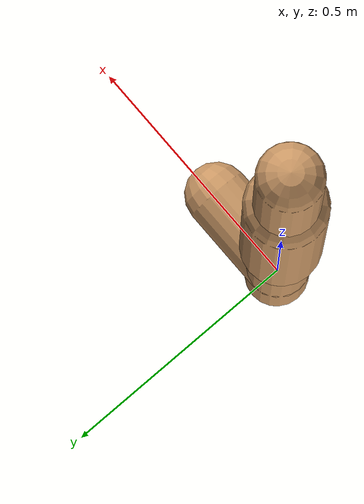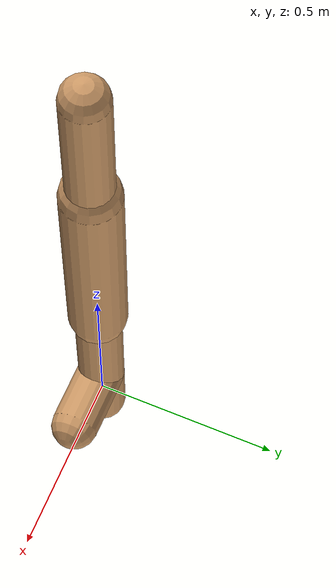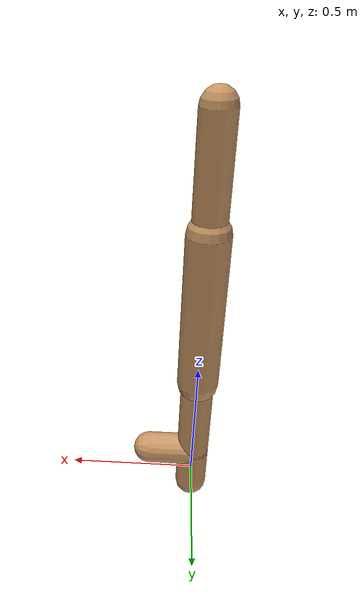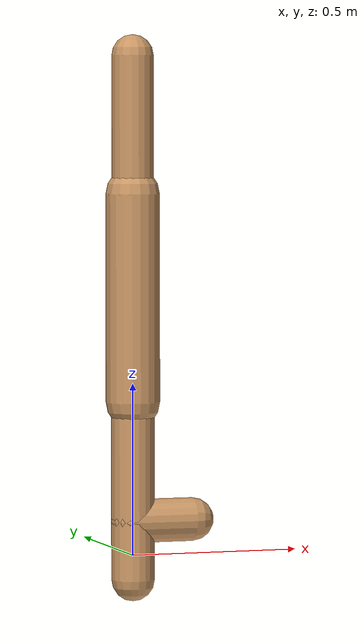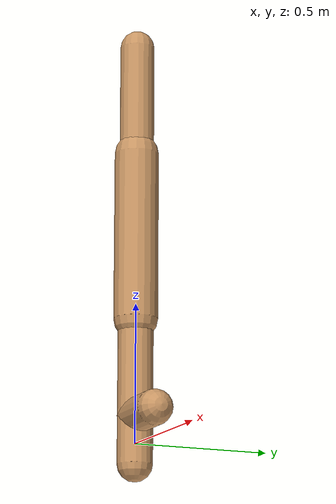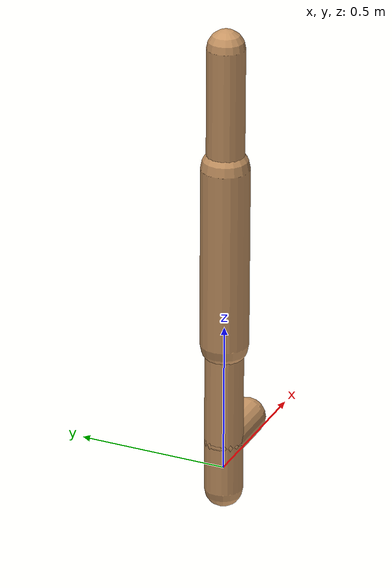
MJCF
<mujoco model="walker2d">
  <compiler angle="degree" coordinate="global" inertiafromgeom="true" />
  <default>
    <joint armature="0.01" damping=".1" limited="true" />
    <geom conaffinity="0" condim="3" contype="1" density="1000" friction="0.8 .1 .1" rgba="0.8 0.6 .4 1" />
  </default>
  <option integrator="RK4" timestep="0.002" />
  <worldbody>

    <body name="torso" pos="0 0 0.32424894306913676">
      <joint armature="0" axis="1 0 0" damping="0" limited="false" name="ignorex" pos="0 0 0" stiffness="0" type="slide" />
      <joint armature="0" axis="0 0 1" damping="0" limited="false" name="ignorez" pos="0 0 0" ref="1.25" stiffness="0" type="slide" />
      <joint armature="0" axis="0 1 0" damping="0" limited="false" name="ignorey" pos="0 0 0" stiffness="0" type="hinge" />
      <geom fromto="0 0 1.45 0 0 1.05" name="torso_geom" size="0.06097281240120871" type="capsule" />
      <body name="thigh">
        <joint axis="0 -1 0" name="thigh_joint" pos="0 0 1.05" range="-150 0" type="hinge" />
        <geom fromto="0.0 0.0 1.05 0.0 0.0 0.44640839538830357" name="thigh_geom" size="0.07849651299270778" type="capsule" />
        <body name="leg" pos="0.0 0.0 -0.1535916046116964">
          <joint axis="0 -1 0" name="leg_joint" pos="0 0 0.6" range="-150 0" type="hinge" />
          <geom fromto="0.0 0.0 0.6 0.0 0.0 -0.07065733845744038" name="leg_geom" size="0.06279721039416622" type="capsule" />
          <body name="foot" pos="0.0 0.0 -0.17065733845744038">
            <joint axis="0 -1 0" name="foot_joint" pos="0 0 0.1" range="-45 45" type="hinge" />
            <geom fromto="0.0 0.0 0.1 0.1793754532613368 0.0 0.1" name="foot_geom" size="0.06365485195081952" type="capsule" />
          </body>
        </body>
      </body>

      <body name="thigh_left">
        <joint axis="0 -1 0" name="thigh_left_joint" pos="0 0 1.05" range="-150 0" type="hinge" />
        <geom fromto="0.0 0.0 1.05 0.0 0.0 0.44640839538830357" name="thigh_left_geom" rgba=".7 .3 .6 1" size="0.07849651299270778" type="capsule" />
        <body name="leg_left" pos="0.0 0.0 -0.1535916046116964">
          <joint axis="0 -1 0" name="leg_left_joint" pos="0 0 0.6" range="-150 0" type="hinge" />
          <geom fromto="0.0 0.0 0.6 0.0 0.0 -0.07065733845744038" name="leg_left_geom" rgba=".7 .3 .6 1" size="0.06279721039416622" type="capsule" />
          <body name="foot_left" pos="0.0 0.0 -0.17065733845744038">
            <joint axis="0 -1 0" name="foot_left_joint" pos="0 0 0.1" range="-45 45" type="hinge" />
            <geom fromto="0.0 0.0 0.1 0.1793754532613368 0.0 0.1" name="foot_left_geom" rgba=".7 .3 .6 1" size="0.06365485195081952" type="capsule" />
          </body>
        </body>
      </body>
    </body>
  </worldbody>
  <actuator>

    <motor ctrllimited="true" ctrlrange="-1.0 1.0" gear="100" joint="thigh_joint" />
    <motor ctrllimited="true" ctrlrange="-1.0 1.0" gear="100" joint="leg_joint" />
    <motor ctrllimited="true" ctrlrange="-1.0 1.0" gear="100" joint="foot_joint" />
    <motor ctrllimited="true" ctrlrange="-1.0 1.0" gear="100" joint="thigh_left_joint" />
    <motor ctrllimited="true" ctrlrange="-1.0 1.0" gear="100" joint="leg_left_joint" />
    <motor ctrllimited="true" ctrlrange="-1.0 1.0" gear="100" joint="foot_left_joint" />

  </actuator>
</mujoco>
